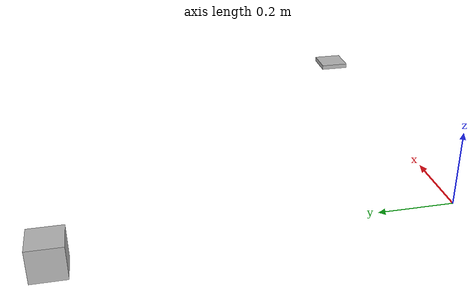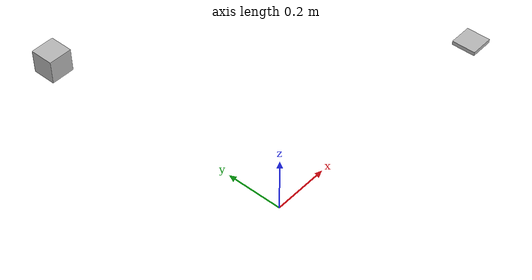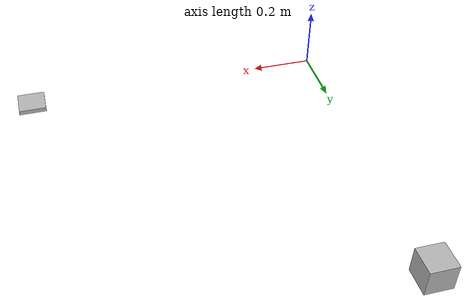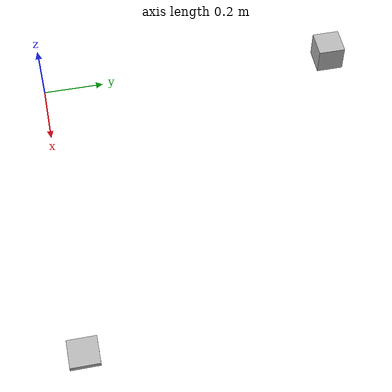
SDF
<?xml version='1.0'?>
<sdf version='1.6'>
  <model name='block_color'>
    <link name='link_1'>
      <pose frame=''>0 0 0 0 0 0</pose>
      <inertial>
        <mass>1</mass>
        <inertia>
          <ixx>0.166667</ixx>
          <ixy>0</ixy>
          <ixz>0</ixz>
          <iyy>0.166667</iyy>
          <iyz>0</iyz>
          <izz>0.166667</izz>
        </inertia>
        <pose frame=''>1 0 0 0 -3.14 0</pose>
      </inertial>
      <gravity>1</gravity>
      <self_collide>0</self_collide>
      <kinematic>0</kinematic>
      <visual name='visual'>
        <pose frame=''>1 0 0 0 -3.14 0</pose>
        <geometry>
	  <mesh><uri>model://block_color/apriltag.dae</uri></mesh>
        </geometry>

        <material>
          <lighting>1</lighting>
          <shader type='pixel'>
            <normal_map>__default__</normal_map>
          </shader>
          <emissive>0.5 0.5 0.5 1</emissive>
        </material>

        <transparency>0</transparency>
        <cast_shadows>1</cast_shadows>
      </visual>
      <collision name='collision'>
        <laser_retro>0</laser_retro>
        <max_contacts>10</max_contacts>
        <pose frame=''>1 0 0 0 -3.14 0</pose>
        <geometry>
	<mesh><uri>model://block_color/apriltag.dae</uri></mesh>
        </geometry>
        <surface>
          <friction>
            <ode>
              <mu>1</mu>
              <mu2>1</mu2>
              <fdir1>0 0 0</fdir1>
              <slip1>0</slip1>
              <slip2>0</slip2>
            </ode>
            <torsional>
              <coefficient>1</coefficient>
              <patch_radius>0</patch_radius>
              <surface_radius>0</surface_radius>
              <use_patch_radius>1</use_patch_radius>
              <ode>
                <slip>0</slip>
              </ode>
            </torsional>
          </friction>
          <bounce>
            <restitution_coefficient>0</restitution_coefficient>
            <threshold>1e+06</threshold>
          </bounce>
          <contact>
            <collide_without_contact>0</collide_without_contact>
            <collide_without_contact_bitmask>1</collide_without_contact_bitmask>
            <collide_bitmask>1</collide_bitmask>
            <ode>
              <soft_cfm>0</soft_cfm>
              <soft_erp>0.2</soft_erp>
              <kp>1e+13</kp>
              <kd>1</kd>
              <max_vel>0.01</max_vel>
              <min_depth>0</min_depth>
            </ode>
            <bullet>
              <split_impulse>1</split_impulse>
              <split_impulse_penetration_threshold>-0.01</split_impulse_penetration_threshold>
              <soft_cfm>0</soft_cfm>
              <soft_erp>0.2</soft_erp>
              <kp>1e+13</kp>
              <kd>1</kd>
            </bullet>
          </contact>
        </surface>
      </collision>
    </link>

    <link name='link_2'>
      <pose frame=''>0 0 0 0 0 0</pose>
      <inertial>
        <mass>1</mass>
        <inertia>
          <ixx>0.166667</ixx>
          <ixy>0</ixy>
          <ixz>0</ixz>
          <iyy>0.166667</iyy>
          <iyz>0</iyz>
          <izz>0.166667</izz>
        </inertia>
        <pose frame=''>0 1 0 0 -0 0</pose>
      </inertial>
      <gravity>1</gravity>
      <self_collide>0</self_collide>
      <kinematic>0</kinematic>
      <visual name='visual_2'>
        <pose frame=''>0 1 0 0 -0 0</pose>
        <geometry>
	  <mesh><uri>model://block_color/apriltag2.dae</uri></mesh>
        </geometry>

        <material>
          <lighting>1</lighting>
          <shader type='pixel'>
            <normal_map>__default__</normal_map>
          </shader>
          <emissive>0.5 0.5 0.5 1</emissive>
        </material>

        <transparency>0</transparency>
        <cast_shadows>1</cast_shadows>
      </visual>
      <collision name='collision_2'>
        <laser_retro>0</laser_retro>
        <max_contacts>10</max_contacts>
        <pose frame=''>0 1 0 0 -0 0</pose>
        <geometry>
	<mesh><uri>model://block_color/apriltag2.dae</uri></mesh>
        </geometry>
        <surface>
          <friction>
            <ode>
              <mu>1</mu>
              <mu2>1</mu2>
              <fdir1>0 0 0</fdir1>
              <slip1>0</slip1>
              <slip2>0</slip2>
            </ode>
            <torsional>
              <coefficient>1</coefficient>
              <patch_radius>0</patch_radius>
              <surface_radius>0</surface_radius>
              <use_patch_radius>1</use_patch_radius>
              <ode>
                <slip>0</slip>
              </ode>
            </torsional>
          </friction>
          <bounce>
            <restitution_coefficient>0</restitution_coefficient>
            <threshold>1e+06</threshold>
          </bounce>
          <contact>
            <collide_without_contact>0</collide_without_contact>
            <collide_without_contact_bitmask>1</collide_without_contact_bitmask>
            <collide_bitmask>1</collide_bitmask>
            <ode>
              <soft_cfm>0</soft_cfm>
              <soft_erp>0.2</soft_erp>
              <kp>1e+13</kp>
              <kd>1</kd>
              <max_vel>0.01</max_vel>
              <min_depth>0</min_depth>
            </ode>
            <bullet>
              <split_impulse>1</split_impulse>
              <split_impulse_penetration_threshold>-0.01</split_impulse_penetration_threshold>
              <soft_cfm>0</soft_cfm>
              <soft_erp>0.2</soft_erp>
              <kp>1e+13</kp>
              <kd>1</kd>
            </bullet>
          </contact>
        </surface>
      </collision>
    </link>
    <static>0</static>
    <allow_auto_disable>1</allow_auto_disable>
  </model>
</sdf>
